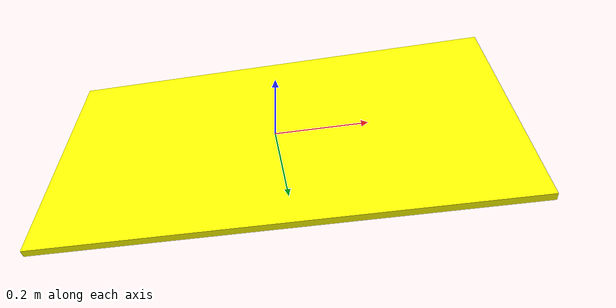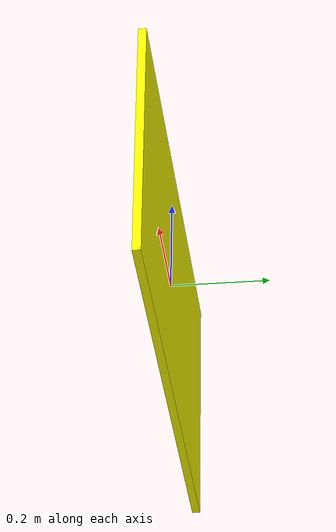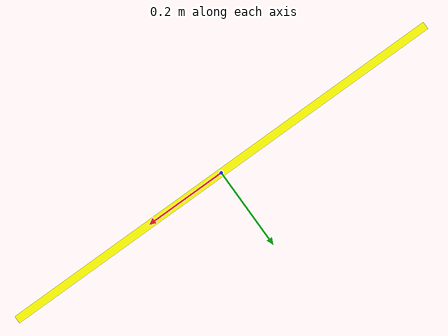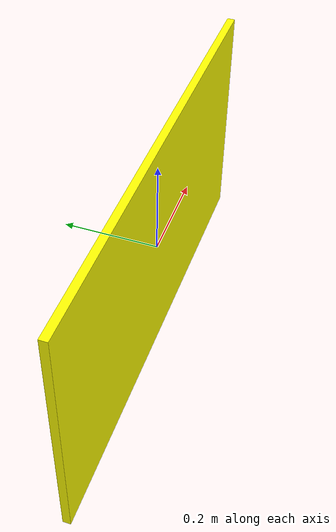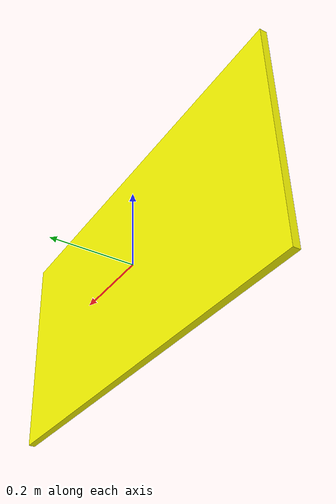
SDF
<?xml version="1.0" ?>
<sdf version="1.6">
  <model name="yellow_sign">
    <link name="link">
      <inertial>
        <mass>0.161</mass>
        <inertia>
          <ixx>0.346954</ixx>
          <ixy>0</ixy>
          <ixz>0</ixz>
          <iyy>0.1772885</iyy>
          <iyz>0</iyz>
          <izz>0.5218261</izz>
        </inertia>
      </inertial>
      <collision name="collision">
        <geometry>
          <mesh>
            <uri>file://models/signs/yellow_sign/meshes/yellow_sign.dae</uri>
            <scale>1 1 1</scale>
          </mesh>
        </geometry>
      </collision>
      <visual name="visual">
	    <geometry>
          <mesh>
            <uri>file://models/signs/yellow_sign/meshes/yellow_sign.dae</uri>
          </mesh>
        </geometry>
        <meta>
          <layer>1</layer>
        </meta>
      </visual>
    </link>
    <static>1</static>
  </model>
</sdf>
